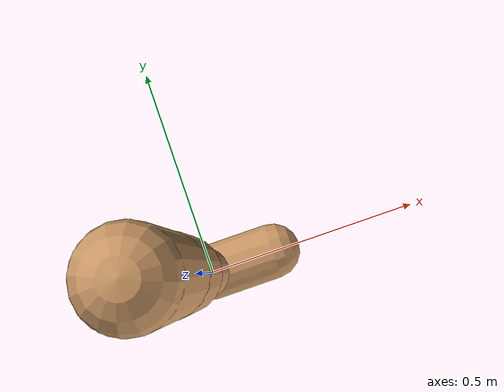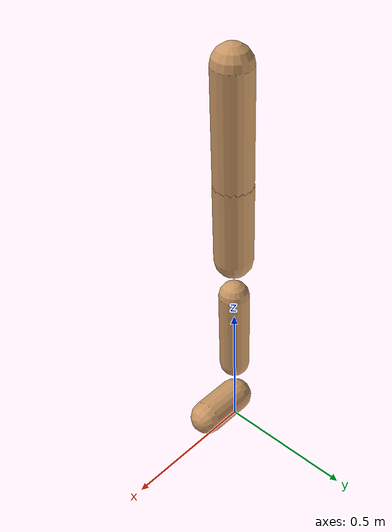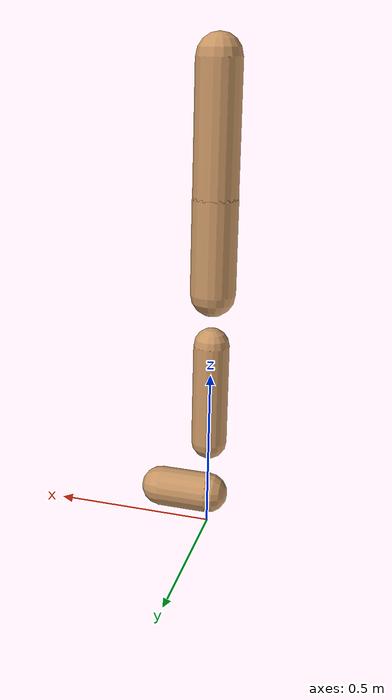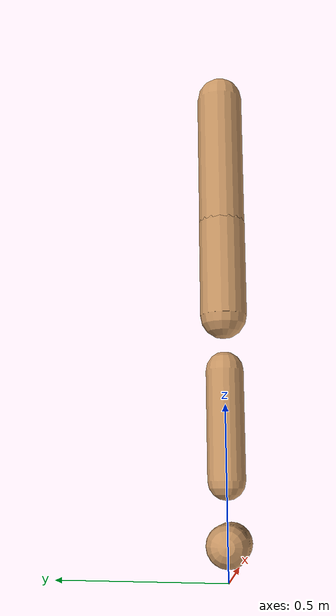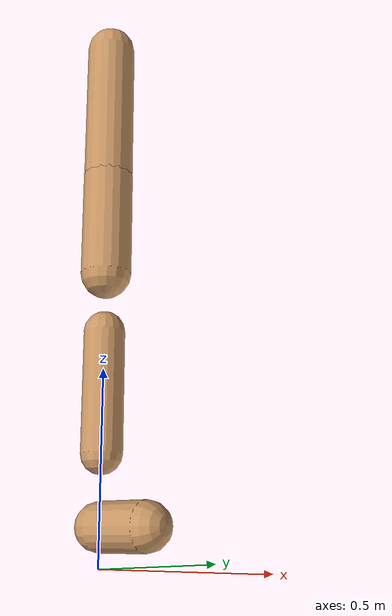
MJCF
<mujoco model="walker2d">
  <compiler angle="degree" coordinate="global" inertiafromgeom="true" />
  <default>
    <joint armature="0.01" damping=".1" limited="true" />
    <geom conaffinity="0" condim="3" contype="1" density="1000" friction="0.8 .1 .1" rgba="0.8 0.6 .4 1" />
  </default>
  <option integrator="RK4" timestep="0.002" />
  <worldbody>

    <body name="torso" pos="0 0 -0.34442279028197637">
      <joint armature="0" axis="1 0 0" damping="0" limited="false" name="ignorex" pos="0 0 0" stiffness="0" type="slide" />
      <joint armature="0" axis="0 0 1" damping="0" limited="false" name="ignorez" pos="0 0 0" ref="1.25" stiffness="0" type="slide" />
      <joint armature="0" axis="0 1 0" damping="0" limited="false" name="ignorey" pos="0 0 0" stiffness="0" type="hinge" />
      <geom fromto="0 0 1.45 0 0 1.05" name="torso_geom" size="0.06770758182137196" type="capsule" />
      <body name="thigh">
        <joint axis="0 -1 0" name="thigh_joint" pos="0 0 1.05" range="-150 0" type="hinge" />
        <geom fromto="0.0 0.0 1.05 0.0 0.0 0.7631476375019888" name="thigh_geom" size="0.0685076984512658" type="capsule" />
        <body name="leg" pos="0.0 0.0 0.1631476375019888">
          <joint axis="0 -1 0" name="leg_joint" pos="0 0 0.6" range="-150 0" type="hinge" />
          <geom fromto="0.0 0.0 0.6 0.0 0.0 0.28127515277998755" name="leg_geom" size="0.05480615876101263" type="capsule" />
          <body name="foot" pos="0.0 0.0 0.18127515277998754">
            <joint axis="0 -1 0" name="foot_joint" pos="0 0 0.1" range="-45 45" type="hinge" />
            <geom fromto="0.0 0.0 0.1 0.15280611460788998 0.0 0.1" name="foot_geom" size="0.06294280858521736" type="capsule" />
          </body>
        </body>
      </body>

      <body name="thigh_left">
        <joint axis="0 -1 0" name="thigh_left_joint" pos="0 0 1.05" range="-150 0" type="hinge" />
        <geom fromto="0.0 0.0 1.05 0.0 0.0 0.7631476375019888" name="thigh_left_geom" rgba=".7 .3 .6 1" size="0.0685076984512658" type="capsule" />
        <body name="leg_left" pos="0.0 0.0 0.1631476375019888">
          <joint axis="0 -1 0" name="leg_left_joint" pos="0 0 0.6" range="-150 0" type="hinge" />
          <geom fromto="0.0 0.0 0.6 0.0 0.0 0.28127515277998755" name="leg_left_geom" rgba=".7 .3 .6 1" size="0.05480615876101263" type="capsule" />
          <body name="foot_left" pos="0.0 0.0 0.18127515277998754">
            <joint axis="0 -1 0" name="foot_left_joint" pos="0 0 0.1" range="-45 45" type="hinge" />
            <geom fromto="0.0 0.0 0.1 0.15280611460788998 0.0 0.1" name="foot_left_geom" rgba=".7 .3 .6 1" size="0.06294280858521736" type="capsule" />
          </body>
        </body>
      </body>
    </body>
  </worldbody>
  <actuator>

    <motor ctrllimited="true" ctrlrange="-1.0 1.0" gear="100" joint="thigh_joint" />
    <motor ctrllimited="true" ctrlrange="-1.0 1.0" gear="100" joint="leg_joint" />
    <motor ctrllimited="true" ctrlrange="-1.0 1.0" gear="100" joint="foot_joint" />
    <motor ctrllimited="true" ctrlrange="-1.0 1.0" gear="100" joint="thigh_left_joint" />
    <motor ctrllimited="true" ctrlrange="-1.0 1.0" gear="100" joint="leg_left_joint" />
    <motor ctrllimited="true" ctrlrange="-1.0 1.0" gear="100" joint="foot_left_joint" />

  </actuator>
</mujoco>
